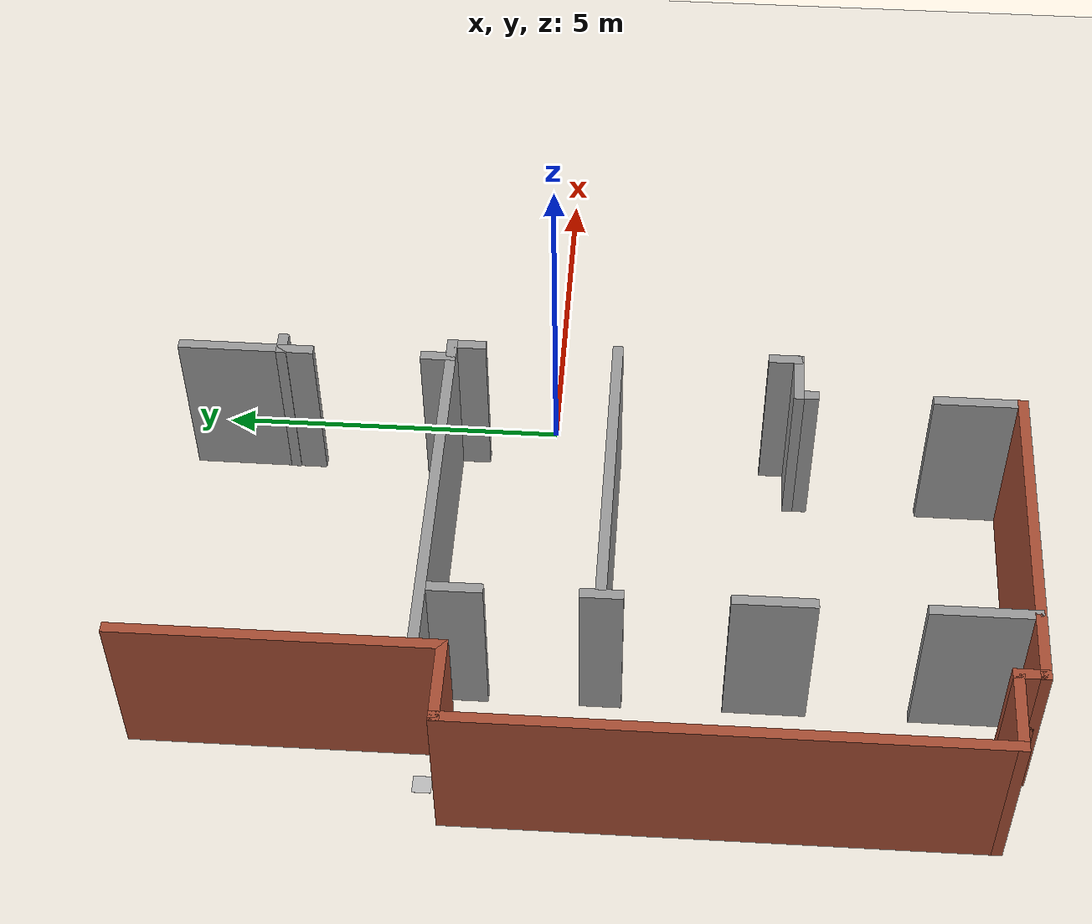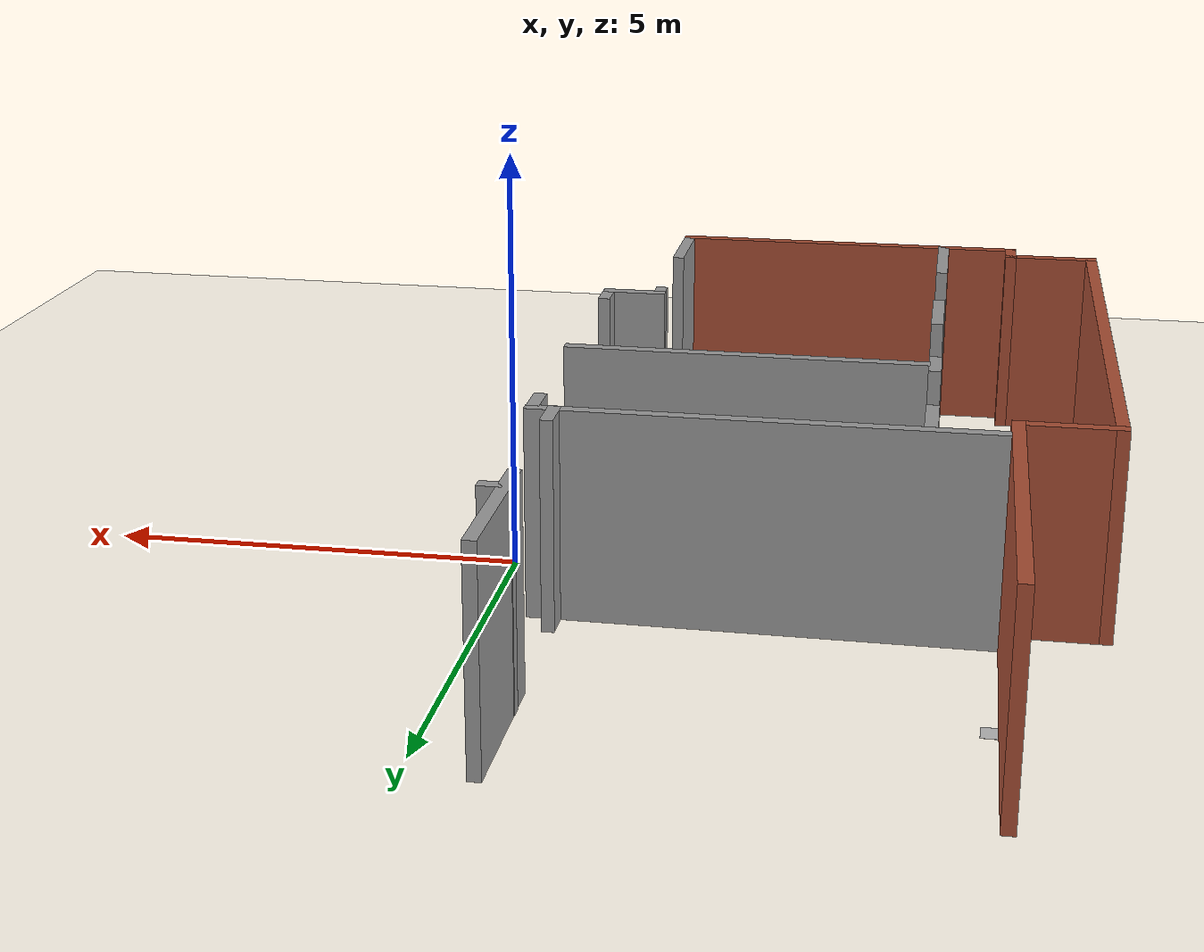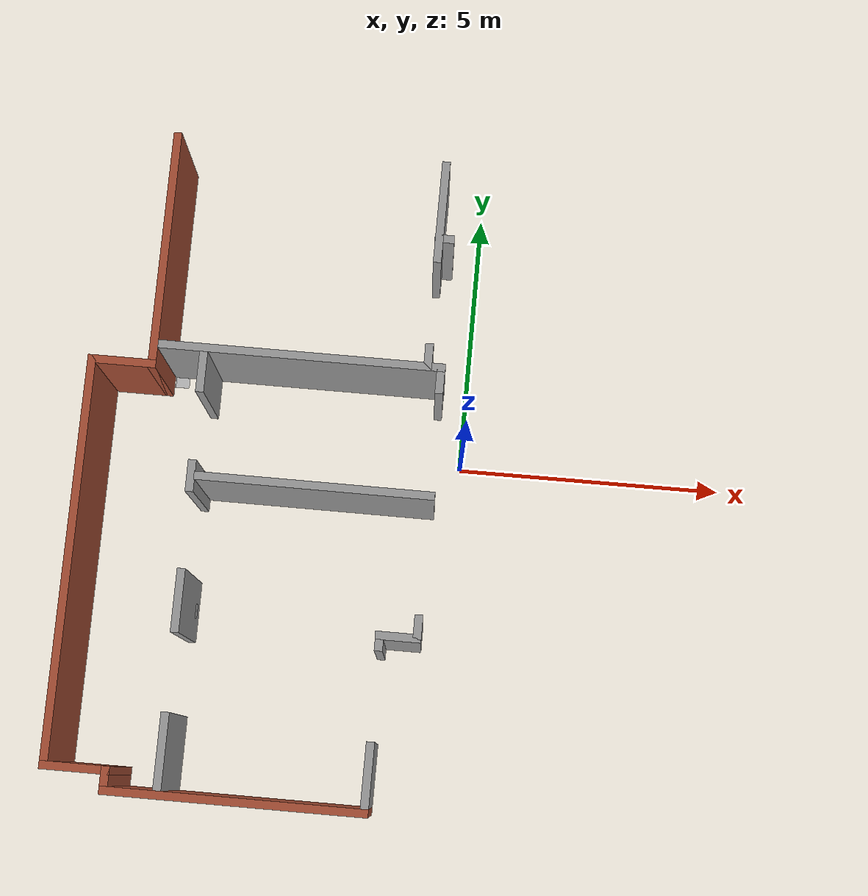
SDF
<sdf version="1.7">
 <world name="default">
  <model name="ground_plane">
   <static>1</static>
   <link name="link">
    <collision name="collision">
     <geometry><plane><normal>0 0 1</normal><size>100 100</size></plane></geometry>
     <surface>
      <contact><collide_bitmask>65535</collide_bitmask></contact>
      <friction><ode><mu>100</mu><mu2>50</mu2></ode></friction>
     </surface>
    </collision>
    <visual name="visual">
     <cast_shadows>0</cast_shadows>
     <geometry><plane><normal>0 0 1</normal><size>100 100</size></plane></geometry>
     <material>
      <script><uri>file://media/materials/scripts/gazebo.material</uri><name>Gazebo/Grey</name></script>
     </material>
    </visual>
   </link>
  </model>
  <model name="Building_2">
   <link name="Wall_10">
    <pose>-5.72446 3.84994 0 0 -0 1.5708</pose>
    <visual name="Wall_10_Visual">
     <pose>0 0 1.25 0 -0 0</pose>
     <geometry><box><size>4.5 0.15 2.5</size></box></geometry>
     <material>
      <script><uri>file://media/materials/scripts/gazebo.material</uri><name>Gazebo/Bricks</name></script>
      <ambient>1 1 1 1</ambient>
      <shader type="pixel"/>
     </material>
     <meta><layer>0</layer></meta>
    </visual>
    <collision name="Wall_10_Collision">
     <pose>0 0 1.25 0 -0 0</pose>
     <geometry><box><size>4.5 0.15 2.5</size></box></geometry>
     <surface>
      <friction>
       <ode><mu>1</mu><mu2>1</mu2><fdir1>0 0 0</fdir1><slip1>0</slip1><slip2>0</slip2></ode>
       <torsional>
        <coefficient>1</coefficient>
        <patch_radius>0</patch_radius>
        <surface_radius>0</surface_radius>
        <use_patch_radius>1</use_patch_radius>
        <ode><slip>0</slip></ode>
       </torsional>
      </friction>
      <bounce><restitution_coefficient>0</restitution_coefficient><threshold>1e+06</threshold></bounce>
      <contact>
       <collide_without_contact>0</collide_without_contact>
       <collide_without_contact_bitmask>1</collide_without_contact_bitmask>
       <collide_bitmask>1</collide_bitmask>
       <ode>
        <soft_cfm>0</soft_cfm>
        <soft_erp>0.2</soft_erp>
        <kp>1e+13</kp>
        <kd>1</kd>
        <max_vel>0.01</max_vel>
        <min_depth>0</min_depth>
       </ode>
       <bullet>
        <split_impulse>1</split_impulse>
        <split_impulse_penetration_threshold>-0.01</split_impulse_penetration_threshold>
        <soft_cfm>0</soft_cfm>
        <soft_erp>0.2</soft_erp>
        <kp>1e+13</kp>
        <kd>1</kd>
       </bullet>
      </contact>
     </surface>
    </collision>
   </link>
   <link name="Wall_19">
    <pose>-4.78364 -5.32139 0 0 -0 1.5708</pose>
    <visual name="Wall_19_Visual">
     <pose>0 0 1.25 0 -0 0</pose>
     <geometry><box><size>1.5 0.15 2.5</size></box></geometry>
     <material>
      <script><uri>file://media/materials/scripts/gazebo.material</uri><name>Gazebo/Grey</name></script>
      <ambient>1 1 1 1</ambient>
      <shader type="pixel"/>
     </material>
     <meta><layer>0</layer></meta>
    </visual>
    <collision name="Wall_19_Collision">
     <pose>0 0 1.25 0 -0 0</pose>
     <geometry><box><size>1.5 0.15 2.5</size></box></geometry>
     <surface>
      <friction>
       <ode><mu>1</mu><mu2>1</mu2><fdir1>0 0 0</fdir1><slip1>0</slip1><slip2>0</slip2></ode>
       <torsional>
        <coefficient>1</coefficient>
        <patch_radius>0</patch_radius>
        <surface_radius>0</surface_radius>
        <use_patch_radius>1</use_patch_radius>
        <ode><slip>0</slip></ode>
       </torsional>
      </friction>
      <bounce><restitution_coefficient>0</restitution_coefficient><threshold>1e+06</threshold></bounce>
      <contact>
       <collide_without_contact>0</collide_without_contact>
       <collide_without_contact_bitmask>1</collide_without_contact_bitmask>
       <collide_bitmask>1</collide_bitmask>
       <ode>
        <soft_cfm>0</soft_cfm>
        <soft_erp>0.2</soft_erp>
        <kp>1e+13</kp>
        <kd>1</kd>
        <max_vel>0.01</max_vel>
        <min_depth>0</min_depth>
       </ode>
       <bullet>
        <split_impulse>1</split_impulse>
        <split_impulse_penetration_threshold>-0.01</split_impulse_penetration_threshold>
        <soft_cfm>0</soft_cfm>
        <soft_erp>0.2</soft_erp>
        <kp>1e+13</kp>
        <kd>1</kd>
       </bullet>
      </contact>
     </surface>
    </collision>
   </link>
   <link name="Wall_23">
    <pose>-4.77837 -2.58462 0 0 -0 1.5708</pose>
    <inertial>
     <inertia><ixx>0</ixx><ixy>0</ixy><ixz>0</ixz><iyy>0</iyy><iyz>0</iyz><izz>0</izz></inertia>
     <mass>0</mass>
    </inertial>
    <visual name="Wall_23_Visual">
     <pose>0 0 1.25 0 -0 0</pose>
     <geometry><box><size>1.15111 0.15 2.5</size></box></geometry>
     <material>
      <script><uri>file://media/materials/scripts/gazebo.material</uri><name>Gazebo/Grey</name></script>
      <ambient>1 1 1 1</ambient>
      <shader type="pixel"/>
     </material>
     <meta><layer>0</layer></meta>
    </visual>
    <collision name="Wall_23_Collision">
     <pose>0 0 1.25 0 -0 0</pose>
     <geometry><box><size>1.15111 0.15 2.5</size></box></geometry>
     <surface>
      <friction>
       <ode><mu>1</mu><mu2>1</mu2><fdir1>0 0 0</fdir1><slip1>0</slip1><slip2>0</slip2></ode>
       <torsional>
        <coefficient>1</coefficient>
        <patch_radius>0</patch_radius>
        <surface_radius>0</surface_radius>
        <use_patch_radius>1</use_patch_radius>
        <ode><slip>0</slip></ode>
       </torsional>
      </friction>
      <bounce><restitution_coefficient>0</restitution_coefficient><threshold>1e+06</threshold></bounce>
      <contact>
       <collide_without_contact>0</collide_without_contact>
       <collide_without_contact_bitmask>1</collide_without_contact_bitmask>
       <collide_bitmask>1</collide_bitmask>
       <ode>
        <soft_cfm>0</soft_cfm>
        <soft_erp>0.2</soft_erp>
        <kp>1e+13</kp>
        <kd>1</kd>
        <max_vel>0.01</max_vel>
        <min_depth>0</min_depth>
       </ode>
       <bullet>
        <split_impulse>1</split_impulse>
        <split_impulse_penetration_threshold>-0.01</split_impulse_penetration_threshold>
        <soft_cfm>0</soft_cfm>
        <soft_erp>0.2</soft_erp>
        <kp>1e+13</kp>
        <kd>1</kd>
       </bullet>
      </contact>
     </surface>
    </collision>
   </link>
   <link name="Wall_25">
    <pose>-4.79341 -0.321482 0 0 -0 1.5708</pose>
    <visual name="Wall_25_Visual">
     <pose>0 0 1.25 0 -0 0</pose>
     <geometry><box><size>0.586087 0.15 2.5</size></box></geometry>
     <material>
      <script><uri>file://media/materials/scripts/gazebo.material</uri><name>Gazebo/Grey</name></script>
      <ambient>1 1 1 1</ambient>
      <shader type="pixel"/>
     </material>
     <meta><layer>0</layer></meta>
    </visual>
    <collision name="Wall_25_Collision">
     <pose>0 0 1.25 0 -0 0</pose>
     <geometry><box><size>0.586087 0.15 2.5</size></box></geometry>
     <surface>
      <friction>
       <ode><mu>1</mu><mu2>1</mu2><fdir1>0 0 0</fdir1><slip1>0</slip1><slip2>0</slip2></ode>
       <torsional>
        <coefficient>1</coefficient>
        <patch_radius>0</patch_radius>
        <surface_radius>0</surface_radius>
        <use_patch_radius>1</use_patch_radius>
        <ode><slip>0</slip></ode>
       </torsional>
      </friction>
      <bounce><restitution_coefficient>0</restitution_coefficient><threshold>1e+06</threshold></bounce>
      <contact>
       <collide_without_contact>0</collide_without_contact>
       <collide_without_contact_bitmask>1</collide_without_contact_bitmask>
       <collide_bitmask>1</collide_bitmask>
       <ode>
        <soft_cfm>0</soft_cfm>
        <soft_erp>0.2</soft_erp>
        <kp>1e+13</kp>
        <kd>1</kd>
        <max_vel>0.01</max_vel>
        <min_depth>0</min_depth>
       </ode>
       <bullet>
        <split_impulse>1</split_impulse>
        <split_impulse_penetration_threshold>-0.01</split_impulse_penetration_threshold>
        <soft_cfm>0</soft_cfm>
        <soft_erp>0.2</soft_erp>
        <kp>1e+13</kp>
        <kd>1</kd>
       </bullet>
      </contact>
     </surface>
    </collision>
   </link>
   <link name="Wall_27">
    <pose>-4.80309 1.60581 0 0 -0 1.5708</pose>
    <inertial>
     <inertia><ixx>0</ixx><ixy>0</ixy><ixz>0</ixz><iyy>0</iyy><iyz>0</iyz><izz>0</izz></inertia>
     <mass>0</mass>
    </inertial>
    <visual name="Wall_27_Visual">
     <pose>0 0 1.25 0 -0 0</pose>
     <geometry><box><size>0.757541 0.15 2.5</size></box></geometry>
     <material>
      <script><uri>file://media/materials/scripts/gazebo.material</uri><name>Gazebo/Grey</name></script>
      <ambient>1 1 1 1</ambient>
      <shader type="pixel"/>
     </material>
     <meta><layer>0</layer></meta>
    </visual>
    <collision name="Wall_27_Collision">
     <pose>0 0 1.25 0 -0 0</pose>
     <geometry><box><size>0.757541 0.15 2.5</size></box></geometry>
     <surface>
      <friction>
       <ode><mu>1</mu><mu2>1</mu2><fdir1>0 0 0</fdir1><slip1>0</slip1><slip2>0</slip2></ode>
       <torsional>
        <coefficient>1</coefficient>
        <patch_radius>0</patch_radius>
        <surface_radius>0</surface_radius>
        <use_patch_radius>1</use_patch_radius>
        <ode><slip>0</slip></ode>
       </torsional>
      </friction>
      <bounce><restitution_coefficient>0</restitution_coefficient><threshold>1e+06</threshold></bounce>
      <contact>
       <collide_without_contact>0</collide_without_contact>
       <collide_without_contact_bitmask>1</collide_without_contact_bitmask>
       <collide_bitmask>1</collide_bitmask>
       <ode>
        <soft_cfm>0</soft_cfm>
        <soft_erp>0.2</soft_erp>
        <kp>1e+13</kp>
        <kd>1</kd>
        <max_vel>0.01</max_vel>
        <min_depth>0</min_depth>
       </ode>
       <bullet>
        <split_impulse>1</split_impulse>
        <split_impulse_penetration_threshold>-0.01</split_impulse_penetration_threshold>
        <soft_cfm>0</soft_cfm>
        <soft_erp>0.2</soft_erp>
        <kp>1e+13</kp>
        <kd>1</kd>
       </bullet>
      </contact>
     </surface>
    </collision>
   </link>
   <link name="Wall_29">
    <pose>-3.01821 2.05691 0 0 -0 0</pose>
    <inertial>
     <inertia><ixx>0</ixx><ixy>0</ixy><ixz>0</ixz><iyy>0</iyy><iyz>0</iyz><izz>0</izz></inertia>
     <mass>0</mass>
    </inertial>
    <visual name="Wall_29_Visual">
     <pose>0 0 1.25 0 -0 0</pose>
     <geometry><box><size>5.27655 0.15 2.5</size></box></geometry>
     <material>
      <script><uri>file://media/materials/scripts/gazebo.material</uri><name>Gazebo/Grey</name></script>
      <ambient>1 1 1 1</ambient>
      <shader type="pixel"/>
     </material>
     <meta><layer>0</layer></meta>
    </visual>
    <collision name="Wall_29_Collision">
     <pose>0 0 1.25 0 -0 0</pose>
     <geometry><box><size>5.27655 0.15 2.5</size></box></geometry>
     <surface>
      <friction>
       <ode><mu>1</mu><mu2>1</mu2><fdir1>0 0 0</fdir1><slip1>0</slip1><slip2>0</slip2></ode>
       <torsional>
        <coefficient>1</coefficient>
        <patch_radius>0</patch_radius>
        <surface_radius>0</surface_radius>
        <use_patch_radius>1</use_patch_radius>
        <ode><slip>0</slip></ode>
       </torsional>
      </friction>
      <bounce><restitution_coefficient>0</restitution_coefficient><threshold>1e+06</threshold></bounce>
      <contact>
       <collide_without_contact>0</collide_without_contact>
       <collide_without_contact_bitmask>1</collide_without_contact_bitmask>
       <collide_bitmask>1</collide_bitmask>
       <ode>
        <soft_cfm>0</soft_cfm>
        <soft_erp>0.2</soft_erp>
        <kp>1e+13</kp>
        <kd>1</kd>
        <max_vel>0.01</max_vel>
        <min_depth>0</min_depth>
       </ode>
       <bullet>
        <split_impulse>1</split_impulse>
        <split_impulse_penetration_threshold>-0.01</split_impulse_penetration_threshold>
        <soft_cfm>0</soft_cfm>
        <soft_erp>0.2</soft_erp>
        <kp>1e+13</kp>
        <kd>1</kd>
       </bullet>
      </contact>
     </surface>
    </collision>
   </link>
   <link name="Wall_30">
    <pose>-0.459211 1.7956 0 0 0 -1.5708</pose>
    <inertial>
     <inertia><ixx>0</ixx><ixy>0</ixy><ixz>0</ixz><iyy>0</iyy><iyz>0</iyz><izz>0</izz></inertia>
     <mass>0</mass>
    </inertial>
    <visual name="Wall_30_Visual">
     <pose>0 0 1.25 0 -0 0</pose>
     <geometry><box><size>0.445654 0.15 2.5</size></box></geometry>
     <material>
      <script><uri>file://media/materials/scripts/gazebo.material</uri><name>Gazebo/Grey</name></script>
      <ambient>1 1 1 1</ambient>
      <shader type="pixel"/>
     </material>
     <meta><layer>0</layer></meta>
    </visual>
    <collision name="Wall_30_Collision">
     <pose>0 0 1.25 0 -0 0</pose>
     <geometry><box><size>0.445654 0.15 2.5</size></box></geometry>
     <surface>
      <friction>
       <ode><mu>1</mu><mu2>1</mu2><fdir1>0 0 0</fdir1><slip1>0</slip1><slip2>0</slip2></ode>
       <torsional>
        <coefficient>1</coefficient>
        <patch_radius>0</patch_radius>
        <surface_radius>0</surface_radius>
        <use_patch_radius>1</use_patch_radius>
        <ode><slip>0</slip></ode>
       </torsional>
      </friction>
      <bounce><restitution_coefficient>0</restitution_coefficient><threshold>1e+06</threshold></bounce>
      <contact>
       <collide_without_contact>0</collide_without_contact>
       <collide_without_contact_bitmask>1</collide_without_contact_bitmask>
       <collide_bitmask>1</collide_bitmask>
       <ode>
        <soft_cfm>0</soft_cfm>
        <soft_erp>0.2</soft_erp>
        <kp>1e+13</kp>
        <kd>1</kd>
        <max_vel>0.01</max_vel>
        <min_depth>0</min_depth>
       </ode>
       <bullet>
        <split_impulse>1</split_impulse>
        <split_impulse_penetration_threshold>-0.01</split_impulse_penetration_threshold>
        <soft_cfm>0</soft_cfm>
        <soft_erp>0.2</soft_erp>
        <kp>1e+13</kp>
        <kd>1</kd>
       </bullet>
      </contact>
     </surface>
    </collision>
   </link>
   <link name="Wall_36">
    <pose>-2.55225 -0.313301 0 0 -0 3.14002</pose>
    <inertial>
     <inertia><ixx>0</ixx><ixy>0</ixy><ixz>0</ixz><iyy>0</iyy><iyz>0</iyz><izz>0</izz></inertia>
     <mass>0</mass>
    </inertial>
    <visual name="Wall_36_Visual">
     <pose>0 0 1.25 0 -0 0</pose>
     <geometry><box><size>4.36835 0.15 2.5</size></box></geometry>
     <material>
      <script><uri>file://media/materials/scripts/gazebo.material</uri><name>Gazebo/Grey</name></script>
      <ambient>1 1 1 1</ambient>
      <shader type="pixel"/>
     </material>
     <meta><layer>0</layer></meta>
    </visual>
    <collision name="Wall_36_Collision">
     <pose>0 0 1.25 0 -0 0</pose>
     <geometry><box><size>4.36835 0.15 2.5</size></box></geometry>
     <surface>
      <friction>
       <ode><mu>1</mu><mu2>1</mu2><fdir1>0 0 0</fdir1><slip1>0</slip1><slip2>0</slip2></ode>
       <torsional>
        <coefficient>1</coefficient>
        <patch_radius>0</patch_radius>
        <surface_radius>0</surface_radius>
        <use_patch_radius>1</use_patch_radius>
        <ode><slip>0</slip></ode>
       </torsional>
      </friction>
      <bounce><restitution_coefficient>0</restitution_coefficient><threshold>1e+06</threshold></bounce>
      <contact>
       <collide_without_contact>0</collide_without_contact>
       <collide_without_contact_bitmask>1</collide_without_contact_bitmask>
       <collide_bitmask>1</collide_bitmask>
       <ode>
        <soft_cfm>0</soft_cfm>
        <soft_erp>0.2</soft_erp>
        <kp>1e+13</kp>
        <kd>1</kd>
        <max_vel>0.01</max_vel>
        <min_depth>0</min_depth>
       </ode>
       <bullet>
        <split_impulse>1</split_impulse>
        <split_impulse_penetration_threshold>-0.01</split_impulse_penetration_threshold>
        <soft_cfm>0</soft_cfm>
        <soft_erp>0.2</soft_erp>
        <kp>1e+13</kp>
        <kd>1</kd>
       </bullet>
      </contact>
     </surface>
    </collision>
   </link>
   <link name="Wall_42">
    <pose>-1.1239 -5.36388 0 0 -0 1.56899</pose>
    <inertial>
     <inertia><ixx>0</ixx><ixy>0</ixy><ixz>0</ixz><iyy>0</iyy><iyz>0</iyz><izz>0</izz></inertia>
     <mass>0</mass>
    </inertial>
    <visual name="Wall_42_Visual">
     <pose>0 0 1.25 0 -0 0</pose>
     <geometry><box><size>1.1746 0.15 2.5</size></box></geometry>
     <material>
      <script><uri>file://media/materials/scripts/gazebo.material</uri><name>Gazebo/Grey</name></script>
      <ambient>1 1 1 1</ambient>
      <shader type="pixel"/>
     </material>
     <meta><layer>0</layer></meta>
    </visual>
    <collision name="Wall_42_Collision">
     <pose>0 0 1.25 0 -0 0</pose>
     <geometry><box><size>1.1746 0.15 2.5</size></box></geometry>
     <surface>
      <friction>
       <ode><mu>1</mu><mu2>1</mu2><fdir1>0 0 0</fdir1><slip1>0</slip1><slip2>0</slip2></ode>
       <torsional>
        <coefficient>1</coefficient>
        <patch_radius>0</patch_radius>
        <surface_radius>0</surface_radius>
        <use_patch_radius>1</use_patch_radius>
        <ode><slip>0</slip></ode>
       </torsional>
      </friction>
      <bounce><restitution_coefficient>0</restitution_coefficient><threshold>1e+06</threshold></bounce>
      <contact>
       <collide_without_contact>0</collide_without_contact>
       <collide_without_contact_bitmask>1</collide_without_contact_bitmask>
       <collide_bitmask>1</collide_bitmask>
       <ode>
        <soft_cfm>0</soft_cfm>
        <soft_erp>0.2</soft_erp>
        <kp>1e+13</kp>
        <kd>1</kd>
        <max_vel>0.01</max_vel>
        <min_depth>0</min_depth>
       </ode>
       <bullet>
        <split_impulse>1</split_impulse>
        <split_impulse_penetration_threshold>-0.01</split_impulse_penetration_threshold>
        <soft_cfm>0</soft_cfm>
        <soft_erp>0.2</soft_erp>
        <kp>1e+13</kp>
        <kd>1</kd>
       </bullet>
      </contact>
     </surface>
    </collision>
   </link>
   <link name="Wall_44">
    <pose>-1.13344 -3.07085 0 0 -0 1.5708</pose>
    <inertial>
     <inertia><ixx>0</ixx><ixy>0</ixy><ixz>0</ixz><iyy>0</iyy><iyz>0</iyz><izz>0</izz></inertia>
     <mass>0</mass>
    </inertial>
    <visual name="Wall_44_Visual">
     <pose>0 0 1.25 0 -0 0</pose>
     <geometry><box><size>0.209166 0.15 2.5</size></box></geometry>
     <material>
      <script><uri>file://media/materials/scripts/gazebo.material</uri><name>Gazebo/Grey</name></script>
      <ambient>1 1 1 1</ambient>
      <shader type="pixel"/>
     </material>
     <meta><layer>0</layer></meta>
    </visual>
    <collision name="Wall_44_Collision">
     <pose>0 0 1.25 0 -0 0</pose>
     <geometry><box><size>0.209166 0.15 2.5</size></box></geometry>
     <surface>
      <friction>
       <ode><mu>1</mu><mu2>1</mu2><fdir1>0 0 0</fdir1><slip1>0</slip1><slip2>0</slip2></ode>
       <torsional>
        <coefficient>1</coefficient>
        <patch_radius>0</patch_radius>
        <surface_radius>0</surface_radius>
        <use_patch_radius>1</use_patch_radius>
        <ode><slip>0</slip></ode>
       </torsional>
      </friction>
      <bounce><restitution_coefficient>0</restitution_coefficient><threshold>1e+06</threshold></bounce>
      <contact>
       <collide_without_contact>0</collide_without_contact>
       <collide_without_contact_bitmask>1</collide_without_contact_bitmask>
       <collide_bitmask>1</collide_bitmask>
       <ode>
        <soft_cfm>0</soft_cfm>
        <soft_erp>0.2</soft_erp>
        <kp>1e+13</kp>
        <kd>1</kd>
        <max_vel>0.01</max_vel>
        <min_depth>0</min_depth>
       </ode>
       <bullet>
        <split_impulse>1</split_impulse>
        <split_impulse_penetration_threshold>-0.01</split_impulse_penetration_threshold>
        <soft_cfm>0</soft_cfm>
        <soft_erp>0.2</soft_erp>
        <kp>1e+13</kp>
        <kd>1</kd>
       </bullet>
      </contact>
     </surface>
    </collision>
   </link>
   <link name="Wall_45">
    <pose>-0.801988 -2.89585 0 0 -0 0</pose>
    <inertial>
     <inertia><ixx>0</ixx><ixy>0</ixy><ixz>0</ixz><iyy>0</iyy><iyz>0</iyz><izz>0</izz></inertia>
     <mass>0</mass>
    </inertial>
    <visual name="Wall_45_Visual">
     <pose>0 0 1.25 0 -0 0</pose>
     <geometry><box><size>0.822962 0.15 2.5</size></box></geometry>
     <material>
      <script><uri>file://media/materials/scripts/gazebo.material</uri><name>Gazebo/Grey</name></script>
      <ambient>1 1 1 1</ambient>
      <shader type="pixel"/>
     </material>
     <meta><layer>0</layer></meta>
    </visual>
    <collision name="Wall_45_Collision">
     <pose>0 0 1.25 0 -0 0</pose>
     <geometry><box><size>0.822962 0.15 2.5</size></box></geometry>
     <surface>
      <friction>
       <ode><mu>1</mu><mu2>1</mu2><fdir1>0 0 0</fdir1><slip1>0</slip1><slip2>0</slip2></ode>
       <torsional>
        <coefficient>1</coefficient>
        <patch_radius>0</patch_radius>
        <surface_radius>0</surface_radius>
        <use_patch_radius>1</use_patch_radius>
        <ode><slip>0</slip></ode>
       </torsional>
      </friction>
      <bounce><restitution_coefficient>0</restitution_coefficient><threshold>1e+06</threshold></bounce>
      <contact>
       <collide_without_contact>0</collide_without_contact>
       <collide_without_contact_bitmask>1</collide_without_contact_bitmask>
       <collide_bitmask>1</collide_bitmask>
       <ode>
        <soft_cfm>0</soft_cfm>
        <soft_erp>0.2</soft_erp>
        <kp>1e+13</kp>
        <kd>1</kd>
        <max_vel>0.01</max_vel>
        <min_depth>0</min_depth>
       </ode>
       <bullet>
        <split_impulse>1</split_impulse>
        <split_impulse_penetration_threshold>-0.01</split_impulse_penetration_threshold>
        <soft_cfm>0</soft_cfm>
        <soft_erp>0.2</soft_erp>
        <kp>1e+13</kp>
        <kd>1</kd>
       </bullet>
      </contact>
     </surface>
    </collision>
   </link>
   <link name="Wall_46">
    <pose>-0.467072 -2.72031 0 0 -0 1.5708</pose>
    <visual name="Wall_46_Visual">
     <pose>0 0 1.25 0 -0 0</pose>
     <geometry><box><size>0.5 0.15 2.5</size></box></geometry>
     <material>
      <script><uri>file://media/materials/scripts/gazebo.material</uri><name>Gazebo/Grey</name></script>
      <ambient>1 1 1 1</ambient>
      <shader type="pixel"/>
     </material>
     <meta><layer>0</layer></meta>
    </visual>
    <collision name="Wall_46_Collision">
     <pose>0 0 1.25 0 -0 0</pose>
     <geometry><box><size>0.5 0.15 2.5</size></box></geometry>
     <surface>
      <friction>
       <ode><mu>1</mu><mu2>1</mu2><fdir1>0 0 0</fdir1><slip1>0</slip1><slip2>0</slip2></ode>
       <torsional>
        <coefficient>1</coefficient>
        <patch_radius>0</patch_radius>
        <surface_radius>0</surface_radius>
        <use_patch_radius>1</use_patch_radius>
        <ode><slip>0</slip></ode>
       </torsional>
      </friction>
      <bounce><restitution_coefficient>0</restitution_coefficient><threshold>1e+06</threshold></bounce>
      <contact>
       <collide_without_contact>0</collide_without_contact>
       <collide_without_contact_bitmask>1</collide_without_contact_bitmask>
       <collide_bitmask>1</collide_bitmask>
       <ode>
        <soft_cfm>0</soft_cfm>
        <soft_erp>0.2</soft_erp>
        <kp>1e+13</kp>
        <kd>1</kd>
        <max_vel>0.01</max_vel>
        <min_depth>0</min_depth>
       </ode>
       <bullet>
        <split_impulse>1</split_impulse>
        <split_impulse_penetration_threshold>-0.01</split_impulse_penetration_threshold>
        <soft_cfm>0</soft_cfm>
        <soft_erp>0.2</soft_erp>
        <kp>1e+13</kp>
        <kd>1</kd>
       </bullet>
      </contact>
     </surface>
    </collision>
   </link>
   <link name="Wall_48">
    <pose>-0.70613 2.23878 0 0 -0 1.5708</pose>
    <visual name="Wall_48_Visual">
     <pose>0 0 1.25 0 -0 0</pose>
     <geometry><box><size>0.5 0.15 2.5</size></box></geometry>
     <material>
      <script><uri>file://media/materials/scripts/gazebo.material</uri><name>Gazebo/Grey</name></script>
      <ambient>1 1 1 1</ambient>
      <shader type="pixel"/>
     </material>
     <meta><layer>0</layer></meta>
    </visual>
    <collision name="Wall_48_Collision">
     <pose>0 0 1.25 0 -0 0</pose>
     <geometry><box><size>0.5 0.15 2.5</size></box></geometry>
     <surface>
      <friction>
       <ode><mu>1</mu><mu2>1</mu2><fdir1>0 0 0</fdir1><slip1>0</slip1><slip2>0</slip2></ode>
       <torsional>
        <coefficient>1</coefficient>
        <patch_radius>0</patch_radius>
        <surface_radius>0</surface_radius>
        <use_patch_radius>1</use_patch_radius>
        <ode><slip>0</slip></ode>
       </torsional>
      </friction>
      <bounce><restitution_coefficient>0</restitution_coefficient><threshold>1e+06</threshold></bounce>
      <contact>
       <collide_without_contact>0</collide_without_contact>
       <collide_without_contact_bitmask>1</collide_without_contact_bitmask>
       <collide_bitmask>1</collide_bitmask>
       <ode>
        <soft_cfm>0</soft_cfm>
        <soft_erp>0.2</soft_erp>
        <kp>1e+13</kp>
        <kd>1</kd>
        <max_vel>0.01</max_vel>
        <min_depth>0</min_depth>
       </ode>
       <bullet>
        <split_impulse>1</split_impulse>
        <split_impulse_penetration_threshold>-0.01</split_impulse_penetration_threshold>
        <soft_cfm>0</soft_cfm>
        <soft_erp>0.2</soft_erp>
        <kp>1e+13</kp>
        <kd>1</kd>
       </bullet>
      </contact>
     </surface>
    </collision>
   </link>
   <link name="Wall_5">
    <pose>-3.42446 -6.02506 0 0 -0 3.14159</pose>
    <visual name="Wall_5_Visual">
     <pose>0 0 1.25 0 -0 0</pose>
     <geometry><box><size>4.75 0.15 2.5</size></box></geometry>
     <material>
      <script><uri>file://media/materials/scripts/gazebo.material</uri><name>Gazebo/Bricks</name></script>
      <ambient>1 1 1 1</ambient>
      <shader type="pixel"/>
     </material>
     <meta><layer>0</layer></meta>
    </visual>
    <collision name="Wall_5_Collision">
     <pose>0 0 1.25 0 -0 0</pose>
     <geometry><box><size>4.75 0.15 2.5</size></box></geometry>
     <surface>
      <friction>
       <ode><mu>1</mu><mu2>1</mu2><fdir1>0 0 0</fdir1><slip1>0</slip1><slip2>0</slip2></ode>
       <torsional>
        <coefficient>1</coefficient>
        <patch_radius>0</patch_radius>
        <surface_radius>0</surface_radius>
        <use_patch_radius>1</use_patch_radius>
        <ode><slip>0</slip></ode>
       </torsional>
      </friction>
      <bounce><restitution_coefficient>0</restitution_coefficient><threshold>1e+06</threshold></bounce>
      <contact>
       <collide_without_contact>0</collide_without_contact>
       <collide_without_contact_bitmask>1</collide_without_contact_bitmask>
       <collide_bitmask>1</collide_bitmask>
       <ode>
        <soft_cfm>0</soft_cfm>
        <soft_erp>0.2</soft_erp>
        <kp>1e+13</kp>
        <kd>1</kd>
        <max_vel>0.01</max_vel>
        <min_depth>0</min_depth>
       </ode>
       <bullet>
        <split_impulse>1</split_impulse>
        <split_impulse_penetration_threshold>-0.01</split_impulse_penetration_threshold>
        <soft_cfm>0</soft_cfm>
        <soft_erp>0.2</soft_erp>
        <kp>1e+13</kp>
        <kd>1</kd>
       </bullet>
      </contact>
     </surface>
    </collision>
   </link>
   <link name="Wall_50">
    <pose>-0.696944 4.99951 0 0 0 -1.57593</pose>
    <inertial>
     <inertia><ixx>0</ixx><ixy>0</ixy><ixz>0</ixz><iyy>0</iyy><iyz>0</iyz><izz>0</izz></inertia>
     <mass>0</mass>
    </inertial>
    <visual name="Wall_50_Visual">
     <pose>0 0 1.25 0 -0 0</pose>
     <geometry><box><size>1.94038 0.15 2.5</size></box></geometry>
     <material>
      <script><uri>file://media/materials/scripts/gazebo.material</uri><name>Gazebo/Grey</name></script>
      <ambient>1 1 1 1</ambient>
      <shader type="pixel"/>
     </material>
     <meta><layer>0</layer></meta>
    </visual>
    <collision name="Wall_50_Collision">
     <pose>0 0 1.25 0 -0 0</pose>
     <geometry><box><size>1.94038 0.15 2.5</size></box></geometry>
     <surface>
      <friction>
       <ode><mu>1</mu><mu2>1</mu2><fdir1>0 0 0</fdir1><slip1>0</slip1><slip2>0</slip2></ode>
       <torsional>
        <coefficient>1</coefficient>
        <patch_radius>0</patch_radius>
        <surface_radius>0</surface_radius>
        <use_patch_radius>1</use_patch_radius>
        <ode><slip>0</slip></ode>
       </torsional>
      </friction>
      <bounce><restitution_coefficient>0</restitution_coefficient><threshold>1e+06</threshold></bounce>
      <contact>
       <collide_without_contact>0</collide_without_contact>
       <collide_without_contact_bitmask>1</collide_without_contact_bitmask>
       <collide_bitmask>1</collide_bitmask>
       <ode>
        <soft_cfm>0</soft_cfm>
        <soft_erp>0.2</soft_erp>
        <kp>1e+13</kp>
        <kd>1</kd>
        <max_vel>0.01</max_vel>
        <min_depth>0</min_depth>
       </ode>
       <bullet>
        <split_impulse>1</split_impulse>
        <split_impulse_penetration_threshold>-0.01</split_impulse_penetration_threshold>
        <soft_cfm>0</soft_cfm>
        <soft_erp>0.2</soft_erp>
        <kp>1e+13</kp>
        <kd>1</kd>
       </bullet>
      </contact>
     </surface>
    </collision>
   </link>
   <link name="Wall_54">
    <pose>-0.601132 4.48759 0 0 -0 0</pose>
    <inertial>
     <inertia><ixx>0</ixx><ixy>0</ixy><ixz>0</ixz><iyy>0</iyy><iyz>0</iyz><izz>0</izz></inertia>
     <mass>0</mass>
    </inertial>
    <visual name="Wall_54_Visual">
     <pose>0 0 1.25 0 -0 0</pose>
     <geometry><box><size>0.362789 0.15 2.5</size></box></geometry>
     <material>
      <script><uri>file://media/materials/scripts/gazebo.material</uri><name>Gazebo/Grey</name></script>
      <ambient>1 1 1 1</ambient>
      <shader type="pixel"/>
     </material>
     <meta><layer>0</layer></meta>
    </visual>
    <collision name="Wall_54_Collision">
     <pose>0 0 1.25 0 -0 0</pose>
     <geometry><box><size>0.362789 0.15 2.5</size></box></geometry>
     <surface>
      <friction>
       <ode><mu>1</mu><mu2>1</mu2><fdir1>0 0 0</fdir1><slip1>0</slip1><slip2>0</slip2></ode>
       <torsional>
        <coefficient>1</coefficient>
        <patch_radius>0</patch_radius>
        <surface_radius>0</surface_radius>
        <use_patch_radius>1</use_patch_radius>
        <ode><slip>0</slip></ode>
       </torsional>
      </friction>
      <bounce><restitution_coefficient>0</restitution_coefficient><threshold>1e+06</threshold></bounce>
      <contact>
       <collide_without_contact>0</collide_without_contact>
       <collide_without_contact_bitmask>1</collide_without_contact_bitmask>
       <collide_bitmask>1</collide_bitmask>
       <ode>
        <soft_cfm>0</soft_cfm>
        <soft_erp>0.2</soft_erp>
        <kp>1e+13</kp>
        <kd>1</kd>
        <max_vel>0.01</max_vel>
        <min_depth>0</min_depth>
       </ode>
       <bullet>
        <split_impulse>1</split_impulse>
        <split_impulse_penetration_threshold>-0.01</split_impulse_penetration_threshold>
        <soft_cfm>0</soft_cfm>
        <soft_erp>0.2</soft_erp>
        <kp>1e+13</kp>
        <kd>1</kd>
       </bullet>
      </contact>
     </surface>
    </collision>
   </link>
   <link name="Wall_6">
    <pose>-5.72446 -5.85006 0 0 -0 1.5708</pose>
    <visual name="Wall_6_Visual">
     <pose>0 0 1.25 0 -0 0</pose>
     <geometry><box><size>0.5 0.15 2.5</size></box></geometry>
     <material>
      <script><uri>file://media/materials/scripts/gazebo.material</uri><name>Gazebo/Bricks</name></script>
      <ambient>1 1 1 1</ambient>
      <shader type="pixel"/>
     </material>
     <meta><layer>0</layer></meta>
    </visual>
    <collision name="Wall_6_Collision">
     <pose>0 0 1.25 0 -0 0</pose>
     <geometry><box><size>0.5 0.15 2.5</size></box></geometry>
     <surface>
      <friction>
       <ode><mu>1</mu><mu2>1</mu2><fdir1>0 0 0</fdir1><slip1>0</slip1><slip2>0</slip2></ode>
       <torsional>
        <coefficient>1</coefficient>
        <patch_radius>0</patch_radius>
        <surface_radius>0</surface_radius>
        <use_patch_radius>1</use_patch_radius>
        <ode><slip>0</slip></ode>
       </torsional>
      </friction>
      <bounce><restitution_coefficient>0</restitution_coefficient><threshold>1e+06</threshold></bounce>
      <contact>
       <collide_without_contact>0</collide_without_contact>
       <collide_without_contact_bitmask>1</collide_without_contact_bitmask>
       <collide_bitmask>1</collide_bitmask>
       <ode>
        <soft_cfm>0</soft_cfm>
        <soft_erp>0.2</soft_erp>
        <kp>1e+13</kp>
        <kd>1</kd>
        <max_vel>0.01</max_vel>
        <min_depth>0</min_depth>
       </ode>
       <bullet>
        <split_impulse>1</split_impulse>
        <split_impulse_penetration_threshold>-0.01</split_impulse_penetration_threshold>
        <soft_cfm>0</soft_cfm>
        <soft_erp>0.2</soft_erp>
        <kp>1e+13</kp>
        <kd>1</kd>
       </bullet>
      </contact>
     </surface>
    </collision>
   </link>
   <link name="Wall_7">
    <pose>-6.27446 -5.67506 0 0 -0 3.14159</pose>
    <visual name="Wall_7_Visual">
     <pose>0 0 1.25 0 -0 0</pose>
     <geometry><box><size>1.25 0.15 2.5</size></box></geometry>
     <material>
      <script><uri>file://media/materials/scripts/gazebo.material</uri><name>Gazebo/Bricks</name></script>
      <ambient>1 1 1 1</ambient>
      <shader type="pixel"/>
     </material>
     <meta><layer>0</layer></meta>
    </visual>
    <collision name="Wall_7_Collision">
     <pose>0 0 1.25 0 -0 0</pose>
     <geometry><box><size>1.25 0.15 2.5</size></box></geometry>
     <surface>
      <friction>
       <ode><mu>1</mu><mu2>1</mu2><fdir1>0 0 0</fdir1><slip1>0</slip1><slip2>0</slip2></ode>
       <torsional>
        <coefficient>1</coefficient>
        <patch_radius>0</patch_radius>
        <surface_radius>0</surface_radius>
        <use_patch_radius>1</use_patch_radius>
        <ode><slip>0</slip></ode>
       </torsional>
      </friction>
      <bounce><restitution_coefficient>0</restitution_coefficient><threshold>1e+06</threshold></bounce>
      <contact>
       <collide_without_contact>0</collide_without_contact>
       <collide_without_contact_bitmask>1</collide_without_contact_bitmask>
       <collide_bitmask>1</collide_bitmask>
       <ode>
        <soft_cfm>0</soft_cfm>
        <soft_erp>0.2</soft_erp>
        <kp>1e+13</kp>
        <kd>1</kd>
        <max_vel>0.01</max_vel>
        <min_depth>0</min_depth>
       </ode>
       <bullet>
        <split_impulse>1</split_impulse>
        <split_impulse_penetration_threshold>-0.01</split_impulse_penetration_threshold>
        <soft_cfm>0</soft_cfm>
        <soft_erp>0.2</soft_erp>
        <kp>1e+13</kp>
        <kd>1</kd>
       </bullet>
      </contact>
     </surface>
    </collision>
   </link>
   <link name="Wall_8">
    <pose>-6.82446 -2.00006 0 0 -0 1.5708</pose>
    <visual name="Wall_8_Visual">
     <pose>0 0 1.25 0 -0 0</pose>
     <geometry><box><size>7.5 0.15 2.5</size></box></geometry>
     <material>
      <script><uri>file://media/materials/scripts/gazebo.material</uri><name>Gazebo/Bricks</name></script>
      <ambient>1 1 1 1</ambient>
      <shader type="pixel"/>
     </material>
     <meta><layer>0</layer></meta>
    </visual>
    <collision name="Wall_8_Collision">
     <pose>0 0 1.25 0 -0 0</pose>
     <geometry><box><size>7.5 0.15 2.5</size></box></geometry>
     <surface>
      <friction>
       <ode><mu>1</mu><mu2>1</mu2><fdir1>0 0 0</fdir1><slip1>0</slip1><slip2>0</slip2></ode>
       <torsional>
        <coefficient>1</coefficient>
        <patch_radius>0</patch_radius>
        <surface_radius>0</surface_radius>
        <use_patch_radius>1</use_patch_radius>
        <ode><slip>0</slip></ode>
       </torsional>
      </friction>
      <bounce><restitution_coefficient>0</restitution_coefficient><threshold>1e+06</threshold></bounce>
      <contact>
       <collide_without_contact>0</collide_without_contact>
       <collide_without_contact_bitmask>1</collide_without_contact_bitmask>
       <collide_bitmask>1</collide_bitmask>
       <ode>
        <soft_cfm>0</soft_cfm>
        <soft_erp>0.2</soft_erp>
        <kp>1e+13</kp>
        <kd>1</kd>
        <max_vel>0.01</max_vel>
        <min_depth>0</min_depth>
       </ode>
       <bullet>
        <split_impulse>1</split_impulse>
        <split_impulse_penetration_threshold>-0.01</split_impulse_penetration_threshold>
        <soft_cfm>0</soft_cfm>
        <soft_erp>0.2</soft_erp>
        <kp>1e+13</kp>
        <kd>1</kd>
       </bullet>
      </contact>
     </surface>
    </collision>
   </link>
   <link name="Wall_9">
    <pose>-6.27446 1.67494 0 0 -0 0</pose>
    <visual name="Wall_9_Visual">
     <pose>0 0 1.25 0 -0 0</pose>
     <geometry><box><size>1.25 0.15 2.5</size></box></geometry>
     <material>
      <script><uri>file://media/materials/scripts/gazebo.material</uri><name>Gazebo/Bricks</name></script>
      <ambient>1 1 1 1</ambient>
      <shader type="pixel"/>
     </material>
     <meta><layer>0</layer></meta>
    </visual>
    <collision name="Wall_9_Collision">
     <pose>0 0 1.25 0 -0 0</pose>
     <geometry><box><size>1.25 0.15 2.5</size></box></geometry>
     <surface>
      <friction>
       <ode><mu>1</mu><mu2>1</mu2><fdir1>0 0 0</fdir1><slip1>0</slip1><slip2>0</slip2></ode>
       <torsional>
        <coefficient>1</coefficient>
        <patch_radius>0</patch_radius>
        <surface_radius>0</surface_radius>
        <use_patch_radius>1</use_patch_radius>
        <ode><slip>0</slip></ode>
       </torsional>
      </friction>
      <bounce><restitution_coefficient>0</restitution_coefficient><threshold>1e+06</threshold></bounce>
      <contact>
       <collide_without_contact>0</collide_without_contact>
       <collide_without_contact_bitmask>1</collide_without_contact_bitmask>
       <collide_bitmask>1</collide_bitmask>
       <ode>
        <soft_cfm>0</soft_cfm>
        <soft_erp>0.2</soft_erp>
        <kp>1e+13</kp>
        <kd>1</kd>
        <max_vel>0.01</max_vel>
        <min_depth>0</min_depth>
       </ode>
       <bullet>
        <split_impulse>1</split_impulse>
        <split_impulse_penetration_threshold>-0.01</split_impulse_penetration_threshold>
        <soft_cfm>0</soft_cfm>
        <soft_erp>0.2</soft_erp>
        <kp>1e+13</kp>
        <kd>1</kd>
       </bullet>
      </contact>
     </surface>
    </collision>
   </link>
   <static>1</static>
   <pose>-0.067383 -0.61416 0 0 -0 0</pose>
  </model>
  <model name="Marker0">
   <static>0</static>
   <link name="marker">
    <visual name="visual">
     <geometry><box><size>0.27 0.27 0.001</size></box></geometry>
     <material>
      <script>
       <uri>model://marker26_8cm_massless/material/scripts</uri>
       <uri>model://marker26_8cm_massless/material/textures</uri>
       <name>Aruco/Marker0</name>
      </script>
     </material>
    </visual>
    <collision name="collision"><geometry><box><size>0.09 0.09 0.02</size></box></geometry></collision>
    <inertial>
     <inertia>
      <ixx>1</ixx>
      <ixy>0</ixy>
      <ixz>0</ixz>
      <iyy>1</iyy>
      <iyz>0</iyz>
      <izz>1</izz>
      <model name="marker26_8cm">
       <pose>1.13 4.44 0.4 -1.57 0 1.57</pose>
       <scale>1 1 1</scale>
       <link name="marker">
        <pose>1.13 4.44 0.4 -1.57 0 1.57</pose>
        <velocity>0 0 0 0 -0 0</velocity>
        <acceleration>0 0 -9.8 0 -0 0</acceleration>
        <wrench>0 0 -9.8 0 -0 0</wrench>
       </link>
      </model>
      <model name="Marker0">
       <pose>-5.72 1.51 -1.0 0 -0 0</pose>
       <scale>1 1 1</scale>
       <link name="marker">
        <pose>-5.72 1.51 -1.0 0 -0 0</pose>
        <velocity>0 0 0 0 -0 0</velocity>
        <acceleration>0 0 -9.8 0 -0 0</acceleration>
        <wrench>0 0 -9.8 0 -0 0</wrench>
       </link>
      </model>
      <model name="Marker7">
       <pose>2.89 -0.17 0.4 -0.000857 1.57 1.5704</pose>
       <scale>1 1 1</scale>
       <link name="marker">
        <pose>2.89 -0.17 0.4 -0.000857 1.57 1.5704</pose>
        <velocity>0 0 0 0 -0 0</velocity>
        <acceleration>0 0 -9.8 0 -0 0</acceleration>
        <wrench>0 0 -9.8 0 -0 0</wrench>
       </link>
      </model>
      <model name="Marker11">
       <pose>-4.77 -3.20 0.4 -1.57 -1.57 1.57</pose>
       <scale>1 1 1</scale>
       <link name="marker">
        <pose>-4.77 -3.20 0.4 -1.57 -1.57 1.57</pose>
        <velocity>0 0 0 0 -0 0</velocity>
        <acceleration>0 0 -9.8 0 -0 0</acceleration>
        <wrench>0 0 -9.8 0 -0 0</wrench>
       </link>
      </model>
     </inertia>
     <mass>1</mass>
    </inertial>
    <enable_wind>1</enable_wind>
    <kinematic>1</kinematic>
   </link>
   <pose>-5.72 1.51 -1.0 0 -0 0</pose>
  </model>
  <model name="Marker11">
   <static>0</static>
   <link name="marker">
    <visual name="visual">
     <geometry><box><size>0.27 0.27 0.001</size></box></geometry>
     <material>
      <script>
       <uri>model://marker26_8cm_massless/material/scripts</uri>
       <uri>model://marker26_8cm_massless/material/textures</uri>
       <name>Aruco/Marker11</name>
      </script>
     </material>
    </visual>
    <collision name="collision"><geometry><box><size>0.09 0.09 0.02</size></box></geometry></collision>
    <inertial>
     <inertia><ixx>1</ixx><ixy>0</ixy><ixz>0</ixz><iyy>1</iyy><iyz>0</iyz><izz>1</izz></inertia>
     <mass>1</mass>
    </inertial>
    <enable_wind>1</enable_wind>
    <kinematic>1</kinematic>
   </link>
   <pose>-4.77 -3.20 0.4 -1.57 -1.57 1.57</pose>
  </model>
 </world>
</sdf>
